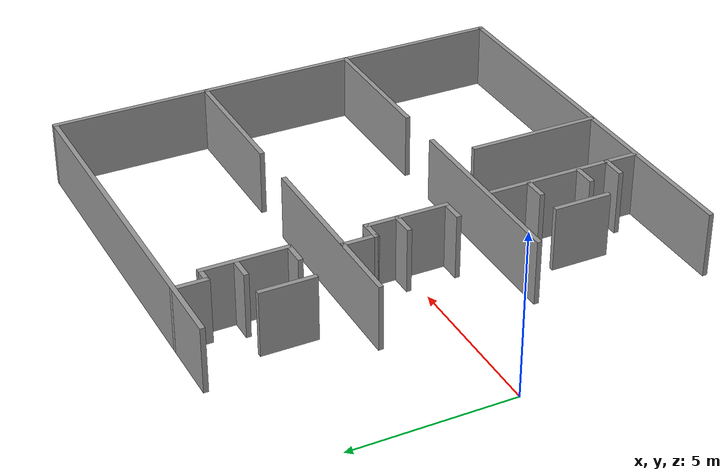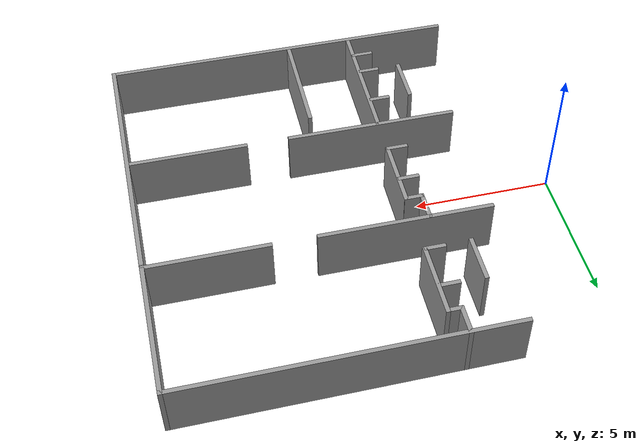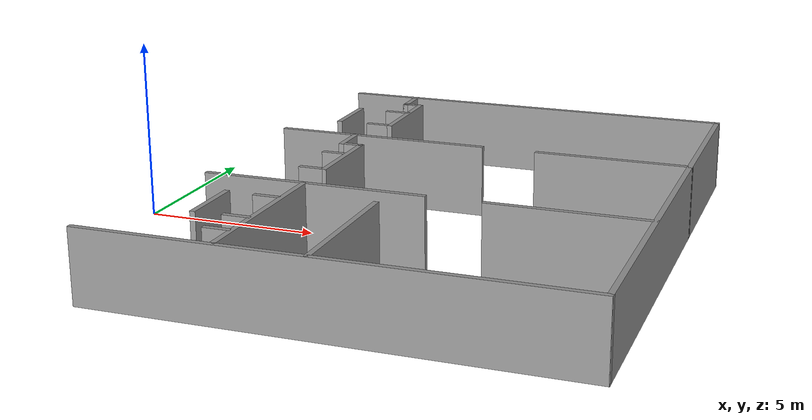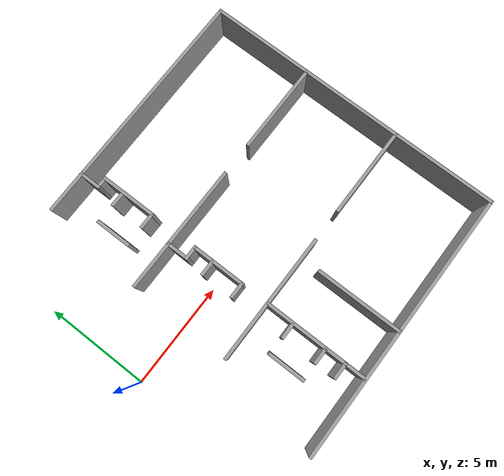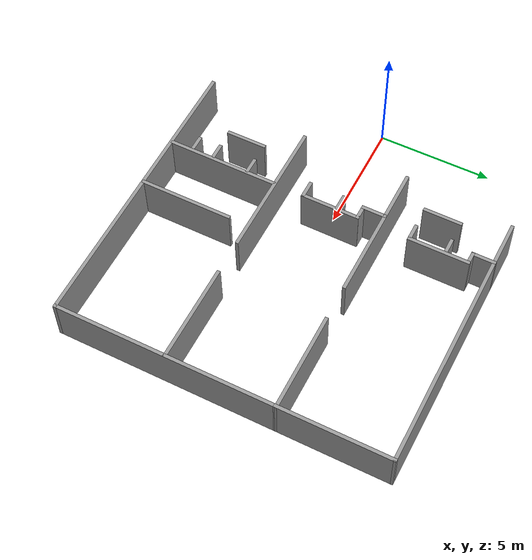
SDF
<sdf version="1.7">
 <model name="HQ">
  <link name="Wall_13">
   <pose>14.9584 4.80245 0 0 0 -1.5696</pose>
   <visual name="Wall_13_Visual">
    <pose>0 0 1.25 0 -0 0</pose>
    <geometry><box><size>4.99102 0.15 2</size></box></geometry>
    <material>
     <script><uri>file://media/materials/scripts/gazebo.material</uri><name>Gazebo/Grey</name></script>
     <ambient>1 1 1 1</ambient>
     <shader type="pixel"/>
    </material>
    <meta><layer>0</layer></meta>
   </visual>
   <collision name="Wall_13_Collision">
    <pose>0 0 1.25 0 -0 0</pose>
    <geometry><box><size>4.99102 0.15 2</size></box></geometry>
    <surface>
     <friction>
      <ode><mu>1</mu><mu2>1</mu2><fdir1>0 0 0</fdir1><slip1>0</slip1><slip2>0</slip2></ode>
      <torsional>
       <coefficient>1</coefficient>
       <patch_radius>0</patch_radius>
       <surface_radius>0</surface_radius>
       <use_patch_radius>1</use_patch_radius>
       <ode><slip>0</slip></ode>
      </torsional>
     </friction>
     <bounce><restitution_coefficient>0</restitution_coefficient><threshold>1e+06</threshold></bounce>
     <contact>
      <collide_without_contact>0</collide_without_contact>
      <collide_without_contact_bitmask>1</collide_without_contact_bitmask>
      <collide_bitmask>1</collide_bitmask>
      <ode>
       <soft_cfm>0</soft_cfm>
       <soft_erp>0.2</soft_erp>
       <kp>1e+13</kp>
       <kd>1</kd>
       <max_vel>0.01</max_vel>
       <min_depth>0</min_depth>
      </ode>
      <bullet>
       <split_impulse>1</split_impulse>
       <split_impulse_penetration_threshold>-0.01</split_impulse_penetration_threshold>
       <soft_cfm>0</soft_cfm>
       <soft_erp>0.2</soft_erp>
       <kp>1e+13</kp>
       <kd>1</kd>
      </bullet>
     </contact>
    </surface>
   </collision>
  </link>
  <link name="Wall_139">
   <pose>6.14807 -2.32093 0 0 0 -0.001582</pose>
   <visual name="Wall_139_Visual">
    <pose>0 0 1.25 0 -0 0</pose>
    <geometry><box><size>6.13288 0.15 2</size></box></geometry>
    <material>
     <script><uri>file://media/materials/scripts/gazebo.material</uri><name>Gazebo/Grey</name></script>
     <ambient>1 1 1 1</ambient>
     <shader type="pixel"/>
    </material>
    <meta><layer>0</layer></meta>
   </visual>
   <collision name="Wall_139_Collision">
    <pose>0 0 1.25 0 -0 0</pose>
    <geometry><box><size>6.13288 0.15 2</size></box></geometry>
    <surface>
     <friction>
      <ode><mu>1</mu><mu2>1</mu2><fdir1>0 0 0</fdir1><slip1>0</slip1><slip2>0</slip2></ode>
      <torsional>
       <coefficient>1</coefficient>
       <patch_radius>0</patch_radius>
       <surface_radius>0</surface_radius>
       <use_patch_radius>1</use_patch_radius>
       <ode><slip>0</slip></ode>
      </torsional>
     </friction>
     <bounce><restitution_coefficient>0</restitution_coefficient><threshold>1e+06</threshold></bounce>
     <contact>
      <collide_without_contact>0</collide_without_contact>
      <collide_without_contact_bitmask>1</collide_without_contact_bitmask>
      <collide_bitmask>1</collide_bitmask>
      <ode>
       <soft_cfm>0</soft_cfm>
       <soft_erp>0.2</soft_erp>
       <kp>1e+13</kp>
       <kd>1</kd>
       <max_vel>0.01</max_vel>
       <min_depth>0</min_depth>
      </ode>
      <bullet>
       <split_impulse>1</split_impulse>
       <split_impulse_penetration_threshold>-0.01</split_impulse_penetration_threshold>
       <soft_cfm>0</soft_cfm>
       <soft_erp>0.2</soft_erp>
       <kp>1e+13</kp>
       <kd>1</kd>
      </bullet>
     </contact>
    </surface>
   </collision>
  </link>
  <link name="Wall_142">
   <pose>8.22923 -5.21005 0 0 -0 1.5708</pose>
   <visual name="Wall_142_Visual">
    <pose>0 0 1.25 0 -0 0</pose>
    <geometry><box><size>4.0945 0.15 2</size></box></geometry>
    <material>
     <script><uri>file://media/materials/scripts/gazebo.material</uri><name>Gazebo/Grey</name></script>
     <ambient>1 1 1 1</ambient>
     <shader type="pixel"/>
    </material>
    <meta><layer>0</layer></meta>
   </visual>
   <collision name="Wall_142_Collision">
    <pose>0 0 1.25 0 -0 0</pose>
    <geometry><box><size>4.0945 0.15 2</size></box></geometry>
    <surface>
     <friction>
      <ode><mu>1</mu><mu2>1</mu2><fdir1>0 0 0</fdir1><slip1>0</slip1><slip2>0</slip2></ode>
      <torsional>
       <coefficient>1</coefficient>
       <patch_radius>0</patch_radius>
       <surface_radius>0</surface_radius>
       <use_patch_radius>1</use_patch_radius>
       <ode><slip>0</slip></ode>
      </torsional>
     </friction>
     <bounce><restitution_coefficient>0</restitution_coefficient><threshold>1e+06</threshold></bounce>
     <contact>
      <collide_without_contact>0</collide_without_contact>
      <collide_without_contact_bitmask>1</collide_without_contact_bitmask>
      <collide_bitmask>1</collide_bitmask>
      <ode>
       <soft_cfm>0</soft_cfm>
       <soft_erp>0.2</soft_erp>
       <kp>1e+13</kp>
       <kd>1</kd>
       <max_vel>0.01</max_vel>
       <min_depth>0</min_depth>
      </ode>
      <bullet>
       <split_impulse>1</split_impulse>
       <split_impulse_penetration_threshold>-0.01</split_impulse_penetration_threshold>
       <soft_cfm>0</soft_cfm>
       <soft_erp>0.2</soft_erp>
       <kp>1e+13</kp>
       <kd>1</kd>
      </bullet>
     </contact>
    </surface>
   </collision>
  </link>
  <link name="Wall_144">
   <pose>5.88898 -4.76429 0 0 -0 1.56838</pose>
   <visual name="Wall_144_Visual">
    <pose>0 0 1.25 0 -0 0</pose>
    <geometry><box><size>4.91701 0.15 2</size></box></geometry>
    <material>
     <script><uri>file://media/materials/scripts/gazebo.material</uri><name>Gazebo/Grey</name></script>
     <ambient>1 1 1 1</ambient>
     <shader type="pixel"/>
    </material>
    <meta><layer>0</layer></meta>
   </visual>
   <collision name="Wall_144_Collision">
    <pose>0 0 1.25 0 -0 0</pose>
    <geometry><box><size>4.91701 0.15 2</size></box></geometry>
    <surface>
     <friction>
      <ode><mu>1</mu><mu2>1</mu2><fdir1>0 0 0</fdir1><slip1>0</slip1><slip2>0</slip2></ode>
      <torsional>
       <coefficient>1</coefficient>
       <patch_radius>0</patch_radius>
       <surface_radius>0</surface_radius>
       <use_patch_radius>1</use_patch_radius>
       <ode><slip>0</slip></ode>
      </torsional>
     </friction>
     <bounce><restitution_coefficient>0</restitution_coefficient><threshold>1e+06</threshold></bounce>
     <contact>
      <collide_without_contact>0</collide_without_contact>
      <collide_without_contact_bitmask>1</collide_without_contact_bitmask>
      <collide_bitmask>1</collide_bitmask>
      <ode>
       <soft_cfm>0</soft_cfm>
       <soft_erp>0.2</soft_erp>
       <kp>1e+13</kp>
       <kd>1</kd>
       <max_vel>0.01</max_vel>
       <min_depth>0</min_depth>
      </ode>
      <bullet>
       <split_impulse>1</split_impulse>
       <split_impulse_penetration_threshold>-0.01</split_impulse_penetration_threshold>
       <soft_cfm>0</soft_cfm>
       <soft_erp>0.2</soft_erp>
       <kp>1e+13</kp>
       <kd>1</kd>
      </bullet>
     </contact>
    </surface>
   </collision>
  </link>
  <link name="Wall_148">
   <pose>5.5052 -3.63375 0 0 -0 0</pose>
   <visual name="Wall_148_Visual">
    <pose>0 0 1.25 0 -0 0</pose>
    <geometry><box><size>0.75 0.15 2</size></box></geometry>
    <material>
     <script><uri>file://media/materials/scripts/gazebo.material</uri><name>Gazebo/Grey</name></script>
     <ambient>1 1 1 1</ambient>
     <shader type="pixel"/>
    </material>
    <meta><layer>0</layer></meta>
   </visual>
   <collision name="Wall_148_Collision">
    <pose>0 0 1.25 0 -0 0</pose>
    <geometry><box><size>0.75 0.15 2</size></box></geometry>
    <surface>
     <friction>
      <ode><mu>1</mu><mu2>1</mu2><fdir1>0 0 0</fdir1><slip1>0</slip1><slip2>0</slip2></ode>
      <torsional>
       <coefficient>1</coefficient>
       <patch_radius>0</patch_radius>
       <surface_radius>0</surface_radius>
       <use_patch_radius>1</use_patch_radius>
       <ode><slip>0</slip></ode>
      </torsional>
     </friction>
     <bounce><restitution_coefficient>0</restitution_coefficient><threshold>1e+06</threshold></bounce>
     <contact>
      <collide_without_contact>0</collide_without_contact>
      <collide_without_contact_bitmask>1</collide_without_contact_bitmask>
      <collide_bitmask>1</collide_bitmask>
      <ode>
       <soft_cfm>0</soft_cfm>
       <soft_erp>0.2</soft_erp>
       <kp>1e+13</kp>
       <kd>1</kd>
       <max_vel>0.01</max_vel>
       <min_depth>0</min_depth>
      </ode>
      <bullet>
       <split_impulse>1</split_impulse>
       <split_impulse_penetration_threshold>-0.01</split_impulse_penetration_threshold>
       <soft_cfm>0</soft_cfm>
       <soft_erp>0.2</soft_erp>
       <kp>1e+13</kp>
       <kd>1</kd>
      </bullet>
     </contact>
    </surface>
   </collision>
  </link>
  <link name="Wall_15">
   <pose>14.9613 -2.41798 0 0 0 -1.5708</pose>
   <visual name="Wall_15_Visual">
    <pose>0 0 1.25 0 -0 0</pose>
    <geometry><box><size>9.75 0.15 2</size></box></geometry>
    <material>
     <script><uri>file://media/materials/scripts/gazebo.material</uri><name>Gazebo/Grey</name></script>
     <ambient>1 1 1 1</ambient>
     <shader type="pixel"/>
    </material>
    <meta><layer>0</layer></meta>
   </visual>
   <collision name="Wall_15_Collision">
    <pose>0 0 1.25 0 -0 0</pose>
    <geometry><box><size>9.75 0.15 2</size></box></geometry>
    <surface>
     <friction>
      <ode><mu>1</mu><mu2>1</mu2><fdir1>0 0 0</fdir1><slip1>0</slip1><slip2>0</slip2></ode>
      <torsional>
       <coefficient>1</coefficient>
       <patch_radius>0</patch_radius>
       <surface_radius>0</surface_radius>
       <use_patch_radius>1</use_patch_radius>
       <ode><slip>0</slip></ode>
      </torsional>
     </friction>
     <bounce><restitution_coefficient>0</restitution_coefficient><threshold>1e+06</threshold></bounce>
     <contact>
      <collide_without_contact>0</collide_without_contact>
      <collide_without_contact_bitmask>1</collide_without_contact_bitmask>
      <collide_bitmask>1</collide_bitmask>
      <ode>
       <soft_cfm>0</soft_cfm>
       <soft_erp>0.2</soft_erp>
       <kp>1e+13</kp>
       <kd>1</kd>
       <max_vel>0.01</max_vel>
       <min_depth>0</min_depth>
      </ode>
      <bullet>
       <split_impulse>1</split_impulse>
       <split_impulse_penetration_threshold>-0.01</split_impulse_penetration_threshold>
       <soft_cfm>0</soft_cfm>
       <soft_erp>0.2</soft_erp>
       <kp>1e+13</kp>
       <kd>1</kd>
      </bullet>
     </contact>
    </surface>
   </collision>
  </link>
  <link name="Wall_154">
   <pose>5.50425 -5.26133 0 0 -0 0.000815</pose>
   <visual name="Wall_154_Visual">
    <pose>0 0 1.25 0 -0 0</pose>
    <geometry><box><size>0.751903 0.15 2</size></box></geometry>
    <material>
     <script><uri>file://media/materials/scripts/gazebo.material</uri><name>Gazebo/Grey</name></script>
     <ambient>1 1 1 1</ambient>
     <shader type="pixel"/>
    </material>
    <meta><layer>0</layer></meta>
   </visual>
   <collision name="Wall_154_Collision">
    <pose>0 0 1.25 0 -0 0</pose>
    <geometry><box><size>0.751903 0.15 2</size></box></geometry>
    <surface>
     <friction>
      <ode><mu>1</mu><mu2>1</mu2><fdir1>0 0 0</fdir1><slip1>0</slip1><slip2>0</slip2></ode>
      <torsional>
       <coefficient>1</coefficient>
       <patch_radius>0</patch_radius>
       <surface_radius>0</surface_radius>
       <use_patch_radius>1</use_patch_radius>
       <ode><slip>0</slip></ode>
      </torsional>
     </friction>
     <bounce><restitution_coefficient>0</restitution_coefficient><threshold>1e+06</threshold></bounce>
     <contact>
      <collide_without_contact>0</collide_without_contact>
      <collide_without_contact_bitmask>1</collide_without_contact_bitmask>
      <collide_bitmask>1</collide_bitmask>
      <ode>
       <soft_cfm>0</soft_cfm>
       <soft_erp>0.2</soft_erp>
       <kp>1e+13</kp>
       <kd>1</kd>
       <max_vel>0.01</max_vel>
       <min_depth>0</min_depth>
      </ode>
      <bullet>
       <split_impulse>1</split_impulse>
       <split_impulse_penetration_threshold>-0.01</split_impulse_penetration_threshold>
       <soft_cfm>0</soft_cfm>
       <soft_erp>0.2</soft_erp>
       <kp>1e+13</kp>
       <kd>1</kd>
      </bullet>
     </contact>
    </surface>
   </collision>
  </link>
  <link name="Wall_159">
   <pose>5.53554 -6.23041 0 0 -0 3.14159</pose>
   <visual name="Wall_159_Visual">
    <pose>0 0 1.25 0 -0 0</pose>
    <geometry><box><size>0.800077 0.15 2</size></box></geometry>
    <material>
     <script><uri>file://media/materials/scripts/gazebo.material</uri><name>Gazebo/Grey</name></script>
     <ambient>1 1 1 1</ambient>
     <shader type="pixel"/>
    </material>
    <meta><layer>0</layer></meta>
   </visual>
   <collision name="Wall_159_Collision">
    <pose>0 0 1.25 0 -0 0</pose>
    <geometry><box><size>0.800077 0.15 2</size></box></geometry>
    <surface>
     <friction>
      <ode><mu>1</mu><mu2>1</mu2><fdir1>0 0 0</fdir1><slip1>0</slip1><slip2>0</slip2></ode>
      <torsional>
       <coefficient>1</coefficient>
       <patch_radius>0</patch_radius>
       <surface_radius>0</surface_radius>
       <use_patch_radius>1</use_patch_radius>
       <ode><slip>0</slip></ode>
      </torsional>
     </friction>
     <bounce><restitution_coefficient>0</restitution_coefficient><threshold>1e+06</threshold></bounce>
     <contact>
      <collide_without_contact>0</collide_without_contact>
      <collide_without_contact_bitmask>1</collide_without_contact_bitmask>
      <collide_bitmask>1</collide_bitmask>
      <ode>
       <soft_cfm>0</soft_cfm>
       <soft_erp>0.2</soft_erp>
       <kp>1e+13</kp>
       <kd>1</kd>
       <max_vel>0.01</max_vel>
       <min_depth>0</min_depth>
      </ode>
      <bullet>
       <split_impulse>1</split_impulse>
       <split_impulse_penetration_threshold>-0.01</split_impulse_penetration_threshold>
       <soft_cfm>0</soft_cfm>
       <soft_erp>0.2</soft_erp>
       <kp>1e+13</kp>
       <kd>1</kd>
      </bullet>
     </contact>
    </surface>
   </collision>
  </link>
  <link name="Wall_163">
   <pose>12.8544 -2.32786 0 0 0 -0.00122</pose>
   <visual name="Wall_163_Visual">
    <pose>0 0 1.25 0 -0 0</pose>
    <geometry><box><size>4.32225 0.15 2</size></box></geometry>
    <material>
     <script><uri>file://media/materials/scripts/gazebo.material</uri><name>Gazebo/Grey</name></script>
     <ambient>1 1 1 1</ambient>
     <shader type="pixel"/>
    </material>
    <meta><layer>0</layer></meta>
   </visual>
   <collision name="Wall_163_Collision">
    <pose>0 0 1.25 0 -0 0</pose>
    <geometry><box><size>4.32225 0.15 2</size></box></geometry>
    <surface>
     <friction>
      <ode><mu>1</mu><mu2>1</mu2><fdir1>0 0 0</fdir1><slip1>0</slip1><slip2>0</slip2></ode>
      <torsional>
       <coefficient>1</coefficient>
       <patch_radius>0</patch_radius>
       <surface_radius>0</surface_radius>
       <use_patch_radius>1</use_patch_radius>
       <ode><slip>0</slip></ode>
      </torsional>
     </friction>
     <bounce><restitution_coefficient>0</restitution_coefficient><threshold>1e+06</threshold></bounce>
     <contact>
      <collide_without_contact>0</collide_without_contact>
      <collide_without_contact_bitmask>1</collide_without_contact_bitmask>
      <collide_bitmask>1</collide_bitmask>
      <ode>
       <soft_cfm>0</soft_cfm>
       <soft_erp>0.2</soft_erp>
       <kp>1e+13</kp>
       <kd>1</kd>
       <max_vel>0.01</max_vel>
       <min_depth>0</min_depth>
      </ode>
      <bullet>
       <split_impulse>1</split_impulse>
       <split_impulse_penetration_threshold>-0.01</split_impulse_penetration_threshold>
       <soft_cfm>0</soft_cfm>
       <soft_erp>0.2</soft_erp>
       <kp>1e+13</kp>
       <kd>1</kd>
      </bullet>
     </contact>
    </surface>
   </collision>
  </link>
  <link name="Wall_17">
   <pose>8.60126 -7.2205 0 0 0 -3.1412</pose>
   <visual name="Wall_17_Visual">
    <pose>0 0 1.25 0 -0 0</pose>
    <geometry><box><size>12.8702 0.15 2</size></box></geometry>
    <material>
     <script><uri>file://media/materials/scripts/gazebo.material</uri><name>Gazebo/Grey</name></script>
     <ambient>1 1 1 1</ambient>
     <shader type="pixel"/>
    </material>
    <meta><layer>0</layer></meta>
   </visual>
   <collision name="Wall_17_Collision">
    <pose>0 0 1.25 0 -0 0</pose>
    <geometry><box><size>12.8702 0.15 2</size></box></geometry>
    <surface>
     <friction>
      <ode><mu>1</mu><mu2>1</mu2><fdir1>0 0 0</fdir1><slip1>0</slip1><slip2>0</slip2></ode>
      <torsional>
       <coefficient>1</coefficient>
       <patch_radius>0</patch_radius>
       <surface_radius>0</surface_radius>
       <use_patch_radius>1</use_patch_radius>
       <ode><slip>0</slip></ode>
      </torsional>
     </friction>
     <bounce><restitution_coefficient>0</restitution_coefficient><threshold>1e+06</threshold></bounce>
     <contact>
      <collide_without_contact>0</collide_without_contact>
      <collide_without_contact_bitmask>1</collide_without_contact_bitmask>
      <collide_bitmask>1</collide_bitmask>
      <ode>
       <soft_cfm>0</soft_cfm>
       <soft_erp>0.2</soft_erp>
       <kp>1e+13</kp>
       <kd>1</kd>
       <max_vel>0.01</max_vel>
       <min_depth>0</min_depth>
      </ode>
      <bullet>
       <split_impulse>1</split_impulse>
       <split_impulse_penetration_threshold>-0.01</split_impulse_penetration_threshold>
       <soft_cfm>0</soft_cfm>
       <soft_erp>0.2</soft_erp>
       <kp>1e+13</kp>
       <kd>1</kd>
      </bullet>
     </contact>
    </surface>
   </collision>
  </link>
  <link name="Wall_177">
   <pose>6.14231 2.4172 0 0 0 -0.00074</pose>
   <visual name="Wall_177_Visual">
    <pose>0 0 1.25 0 -0 0</pose>
    <geometry><box><size>6.10576 0.15 2</size></box></geometry>
    <material>
     <script><uri>file://media/materials/scripts/gazebo.material</uri><name>Gazebo/Grey</name></script>
     <ambient>1 1 1 1</ambient>
     <shader type="pixel"/>
    </material>
    <meta><layer>0</layer></meta>
   </visual>
   <collision name="Wall_177_Collision">
    <pose>0 0 1.25 0 -0 0</pose>
    <geometry><box><size>6.10576 0.15 2</size></box></geometry>
    <surface>
     <friction>
      <ode><mu>1</mu><mu2>1</mu2><fdir1>0 0 0</fdir1><slip1>0</slip1><slip2>0</slip2></ode>
      <torsional>
       <coefficient>1</coefficient>
       <patch_radius>0</patch_radius>
       <surface_radius>0</surface_radius>
       <use_patch_radius>1</use_patch_radius>
       <ode><slip>0</slip></ode>
      </torsional>
     </friction>
     <bounce><restitution_coefficient>0</restitution_coefficient><threshold>1e+06</threshold></bounce>
     <contact>
      <collide_without_contact>0</collide_without_contact>
      <collide_without_contact_bitmask>1</collide_without_contact_bitmask>
      <collide_bitmask>1</collide_bitmask>
      <ode>
       <soft_cfm>0</soft_cfm>
       <soft_erp>0.2</soft_erp>
       <kp>1e+13</kp>
       <kd>1</kd>
       <max_vel>0.01</max_vel>
       <min_depth>0</min_depth>
      </ode>
      <bullet>
       <split_impulse>1</split_impulse>
       <split_impulse_penetration_threshold>-0.01</split_impulse_penetration_threshold>
       <soft_cfm>0</soft_cfm>
       <soft_erp>0.2</soft_erp>
       <kp>1e+13</kp>
       <kd>1</kd>
      </bullet>
     </contact>
    </surface>
   </collision>
  </link>
  <link name="Wall_182">
   <pose>12.865 2.415 0 0 -0 0</pose>
   <visual name="Wall_182_Visual">
    <pose>0 0 1.25 0 -0 0</pose>
    <geometry><box><size>4.34 0.15 2</size></box></geometry>
    <material>
     <script><uri>file://media/materials/scripts/gazebo.material</uri><name>Gazebo/Grey</name></script>
     <ambient>1 1 1 1</ambient>
     <shader type="pixel"/>
    </material>
    <meta><layer>0</layer></meta>
   </visual>
   <collision name="Wall_182_Collision">
    <pose>0 0 1.25 0 -0 0</pose>
    <geometry><box><size>4.34 0.15 2</size></box></geometry>
    <surface>
     <friction>
      <ode><mu>1</mu><mu2>1</mu2><fdir1>0 0 0</fdir1><slip1>0</slip1><slip2>0</slip2></ode>
      <torsional>
       <coefficient>1</coefficient>
       <patch_radius>0</patch_radius>
       <surface_radius>0</surface_radius>
       <use_patch_radius>1</use_patch_radius>
       <ode><slip>0</slip></ode>
      </torsional>
     </friction>
     <bounce><restitution_coefficient>0</restitution_coefficient><threshold>1e+06</threshold></bounce>
     <contact>
      <collide_without_contact>0</collide_without_contact>
      <collide_without_contact_bitmask>1</collide_without_contact_bitmask>
      <collide_bitmask>1</collide_bitmask>
      <ode>
       <soft_cfm>0</soft_cfm>
       <soft_erp>0.2</soft_erp>
       <kp>1e+13</kp>
       <kd>1</kd>
       <max_vel>0.01</max_vel>
       <min_depth>0</min_depth>
      </ode>
      <bullet>
       <split_impulse>1</split_impulse>
       <split_impulse_penetration_threshold>-0.01</split_impulse_penetration_threshold>
       <soft_cfm>0</soft_cfm>
       <soft_erp>0.2</soft_erp>
       <kp>1e+13</kp>
       <kd>1</kd>
      </bullet>
     </contact>
    </surface>
   </collision>
  </link>
  <link name="Wall_187">
   <pose>5.88896 0.21866 0 0 -0 1.56805</pose>
   <inertial>
    <inertia><ixx>0</ixx><ixy>0</ixy><ixz>0</ixz><iyy>0</iyy><iyz>0</iyz><izz>0</izz></inertia>
    <mass>0</mass>
   </inertial>
   <visual name="Wall_187_Visual">
    <pose>0 0 1.25 0 -0 0</pose>
    <geometry><box><size>2.60562 0.15 2</size></box></geometry>
    <material>
     <script><uri>file://media/materials/scripts/gazebo.material</uri><name>Gazebo/Grey</name></script>
     <ambient>1 1 1 1</ambient>
     <shader type="pixel"/>
    </material>
    <meta><layer>0</layer></meta>
   </visual>
   <collision name="Wall_187_Collision">
    <pose>0 0 1.25 0 -0 0</pose>
    <geometry><box><size>2.60562 0.15 2</size></box></geometry>
    <surface>
     <friction>
      <ode><mu>1</mu><mu2>1</mu2><fdir1>0 0 0</fdir1><slip1>0</slip1><slip2>0</slip2></ode>
      <torsional>
       <coefficient>1</coefficient>
       <patch_radius>0</patch_radius>
       <surface_radius>0</surface_radius>
       <use_patch_radius>1</use_patch_radius>
       <ode><slip>0</slip></ode>
      </torsional>
     </friction>
     <bounce><restitution_coefficient>0</restitution_coefficient><threshold>1e+06</threshold></bounce>
     <contact>
      <collide_without_contact>0</collide_without_contact>
      <collide_without_contact_bitmask>1</collide_without_contact_bitmask>
      <collide_bitmask>1</collide_bitmask>
      <ode>
       <soft_cfm>0</soft_cfm>
       <soft_erp>0.2</soft_erp>
       <kp>1e+13</kp>
       <kd>1</kd>
       <max_vel>0.01</max_vel>
       <min_depth>0</min_depth>
      </ode>
      <bullet>
       <split_impulse>1</split_impulse>
       <split_impulse_penetration_threshold>-0.01</split_impulse_penetration_threshold>
       <soft_cfm>0</soft_cfm>
       <soft_erp>0.2</soft_erp>
       <kp>1e+13</kp>
       <kd>1</kd>
      </bullet>
     </contact>
    </surface>
   </collision>
  </link>
  <link name="Wall_209">
   <pose>5.5449 0.510604 0 0 -0 0</pose>
   <visual name="Wall_209_Visual">
    <pose>0 0 1.25 0 -0 0</pose>
    <geometry><box><size>0.761883 0.15 2</size></box></geometry>
    <material>
     <script><uri>file://media/materials/scripts/gazebo.material</uri><name>Gazebo/Grey</name></script>
     <ambient>1 1 1 1</ambient>
     <shader type="pixel"/>
    </material>
    <meta><layer>0</layer></meta>
   </visual>
   <collision name="Wall_209_Collision">
    <pose>0 0 1.25 0 -0 0</pose>
    <geometry><box><size>0.761883 0.15 2</size></box></geometry>
    <surface>
     <friction>
      <ode><mu>1</mu><mu2>1</mu2><fdir1>0 0 0</fdir1><slip1>0</slip1><slip2>0</slip2></ode>
      <torsional>
       <coefficient>1</coefficient>
       <patch_radius>0</patch_radius>
       <surface_radius>0</surface_radius>
       <use_patch_radius>1</use_patch_radius>
       <ode><slip>0</slip></ode>
      </torsional>
     </friction>
     <bounce><restitution_coefficient>0</restitution_coefficient><threshold>1e+06</threshold></bounce>
     <contact>
      <collide_without_contact>0</collide_without_contact>
      <collide_without_contact_bitmask>1</collide_without_contact_bitmask>
      <collide_bitmask>1</collide_bitmask>
      <ode>
       <soft_cfm>0</soft_cfm>
       <soft_erp>0.2</soft_erp>
       <kp>1e+13</kp>
       <kd>1</kd>
       <max_vel>0.01</max_vel>
       <min_depth>0</min_depth>
      </ode>
      <bullet>
       <split_impulse>1</split_impulse>
       <split_impulse_penetration_threshold>-0.01</split_impulse_penetration_threshold>
       <soft_cfm>0</soft_cfm>
       <soft_erp>0.2</soft_erp>
       <kp>1e+13</kp>
       <kd>1</kd>
      </bullet>
     </contact>
    </surface>
   </collision>
  </link>
  <link name="Wall_209_clone">
   <pose>5.54342 -1.00905 0 0 -0 0</pose>
   <visual name="Wall_209_Visual">
    <pose>0 0 1.25 0 -0 0</pose>
    <geometry><box><size>0.761883 0.15 2</size></box></geometry>
    <material>
     <script><uri>file://media/materials/scripts/gazebo.material</uri><name>Gazebo/Grey</name></script>
     <ambient>1 1 1 1</ambient>
     <shader type="pixel"/>
    </material>
    <meta><layer>0</layer></meta>
   </visual>
   <collision name="Wall_209_Collision">
    <pose>0 0 1.25 0 -0 0</pose>
    <geometry><box><size>0.761883 0.15 2</size></box></geometry>
    <surface>
     <friction>
      <ode><mu>1</mu><mu2>1</mu2><fdir1>0 0 0</fdir1><slip1>0</slip1><slip2>0</slip2></ode>
      <torsional>
       <coefficient>1</coefficient>
       <patch_radius>0</patch_radius>
       <surface_radius>0</surface_radius>
       <use_patch_radius>1</use_patch_radius>
       <ode><slip>0</slip></ode>
      </torsional>
     </friction>
     <bounce><restitution_coefficient>0</restitution_coefficient><threshold>1e+06</threshold></bounce>
     <contact>
      <collide_without_contact>0</collide_without_contact>
      <collide_without_contact_bitmask>1</collide_without_contact_bitmask>
      <collide_bitmask>1</collide_bitmask>
      <ode>
       <soft_cfm>0</soft_cfm>
       <soft_erp>0.2</soft_erp>
       <kp>1e+13</kp>
       <kd>1</kd>
       <max_vel>0.01</max_vel>
       <min_depth>0</min_depth>
      </ode>
      <bullet>
       <split_impulse>1</split_impulse>
       <split_impulse_penetration_threshold>-0.01</split_impulse_penetration_threshold>
       <soft_cfm>0</soft_cfm>
       <soft_erp>0.2</soft_erp>
       <kp>1e+13</kp>
       <kd>1</kd>
      </bullet>
     </contact>
    </surface>
   </collision>
  </link>
  <link name="Wall_213">
   <pose>5.88934 5.02004 0 0 -0 1.57131</pose>
   <inertial>
    <inertia><ixx>0</ixx><ixy>0</ixy><ixz>0</ixz><iyy>0</iyy><iyz>0</iyz><izz>0</izz></inertia>
    <mass>0</mass>
   </inertial>
   <visual name="Wall_213_Visual">
    <pose>0 0 1.25 0 -0 0</pose>
    <geometry><box><size>2.70705 0.15 2</size></box></geometry>
    <material>
     <script><uri>file://media/materials/scripts/gazebo.material</uri><name>Gazebo/Grey</name></script>
     <ambient>1 1 1 1</ambient>
     <shader type="pixel"/>
    </material>
    <meta><layer>0</layer></meta>
   </visual>
   <collision name="Wall_213_Collision">
    <pose>0 0 1.25 0 -0 0</pose>
    <geometry><box><size>2.70705 0.15 2</size></box></geometry>
    <surface>
     <friction>
      <ode><mu>1</mu><mu2>1</mu2><fdir1>0 0 0</fdir1><slip1>0</slip1><slip2>0</slip2></ode>
      <torsional>
       <coefficient>1</coefficient>
       <patch_radius>0</patch_radius>
       <surface_radius>0</surface_radius>
       <use_patch_radius>1</use_patch_radius>
       <ode><slip>0</slip></ode>
      </torsional>
     </friction>
     <bounce><restitution_coefficient>0</restitution_coefficient><threshold>1e+06</threshold></bounce>
     <contact>
      <collide_without_contact>0</collide_without_contact>
      <collide_without_contact_bitmask>1</collide_without_contact_bitmask>
      <collide_bitmask>1</collide_bitmask>
      <ode>
       <soft_cfm>0</soft_cfm>
       <soft_erp>0.2</soft_erp>
       <kp>1e+13</kp>
       <kd>1</kd>
       <max_vel>0.01</max_vel>
       <min_depth>0</min_depth>
      </ode>
      <bullet>
       <split_impulse>1</split_impulse>
       <split_impulse_penetration_threshold>-0.01</split_impulse_penetration_threshold>
       <soft_cfm>0</soft_cfm>
       <soft_erp>0.2</soft_erp>
       <kp>1e+13</kp>
       <kd>1</kd>
      </bullet>
     </contact>
    </surface>
   </collision>
  </link>
  <link name="Wall_22">
   <pose>4.3552 -4.44742 0 0 0 -1.5708</pose>
   <visual name="Wall_22_Visual">
    <pose>0 0 1.25 0 -0 0</pose>
    <geometry><box><size>1.77741 0.15 2</size></box></geometry>
    <material>
     <script><uri>file://media/materials/scripts/gazebo.material</uri><name>Gazebo/Grey</name></script>
     <ambient>1 1 1 1</ambient>
     <shader type="pixel"/>
    </material>
    <meta><layer>0</layer></meta>
   </visual>
   <collision name="Wall_22_Collision">
    <pose>0 0 1.25 0 -0 0</pose>
    <geometry><box><size>1.77741 0.15 2</size></box></geometry>
    <surface>
     <friction>
      <ode><mu>1</mu><mu2>1</mu2><fdir1>0 0 0</fdir1><slip1>0</slip1><slip2>0</slip2></ode>
      <torsional>
       <coefficient>1</coefficient>
       <patch_radius>0</patch_radius>
       <surface_radius>0</surface_radius>
       <use_patch_radius>1</use_patch_radius>
       <ode><slip>0</slip></ode>
      </torsional>
     </friction>
     <bounce><restitution_coefficient>0</restitution_coefficient><threshold>1e+06</threshold></bounce>
     <contact>
      <collide_without_contact>0</collide_without_contact>
      <collide_without_contact_bitmask>1</collide_without_contact_bitmask>
      <collide_bitmask>1</collide_bitmask>
      <ode>
       <soft_cfm>0</soft_cfm>
       <soft_erp>0.2</soft_erp>
       <kp>1e+13</kp>
       <kd>1</kd>
       <max_vel>0.01</max_vel>
       <min_depth>0</min_depth>
      </ode>
      <bullet>
       <split_impulse>1</split_impulse>
       <split_impulse_penetration_threshold>-0.01</split_impulse_penetration_threshold>
       <soft_cfm>0</soft_cfm>
       <soft_erp>0.2</soft_erp>
       <kp>1e+13</kp>
       <kd>1</kd>
      </bullet>
     </contact>
    </surface>
   </collision>
  </link>
  <link name="Wall_222">
   <pose>4.30023 4.51838 0 0 -0 1.5708</pose>
   <visual name="Wall_222_Visual">
    <pose>0 0 1.25 0 -0 0</pose>
    <geometry><box><size>1.71003 0.15 2</size></box></geometry>
    <material>
     <script><uri>file://media/materials/scripts/gazebo.material</uri><name>Gazebo/Grey</name></script>
     <ambient>1 1 1 1</ambient>
     <shader type="pixel"/>
    </material>
    <meta><layer>0</layer></meta>
   </visual>
   <collision name="Wall_222_Collision">
    <pose>0 0 1.25 0 -0 0</pose>
    <geometry><box><size>1.71003 0.15 2</size></box></geometry>
    <surface>
     <friction>
      <ode><mu>1</mu><mu2>1</mu2><fdir1>0 0 0</fdir1><slip1>0</slip1><slip2>0</slip2></ode>
      <torsional>
       <coefficient>1</coefficient>
       <patch_radius>0</patch_radius>
       <surface_radius>0</surface_radius>
       <use_patch_radius>1</use_patch_radius>
       <ode><slip>0</slip></ode>
      </torsional>
     </friction>
     <bounce><restitution_coefficient>0</restitution_coefficient><threshold>1e+06</threshold></bounce>
     <contact>
      <collide_without_contact>0</collide_without_contact>
      <collide_without_contact_bitmask>1</collide_without_contact_bitmask>
      <collide_bitmask>1</collide_bitmask>
      <ode>
       <soft_cfm>0</soft_cfm>
       <soft_erp>0.2</soft_erp>
       <kp>1e+13</kp>
       <kd>1</kd>
       <max_vel>0.01</max_vel>
       <min_depth>0</min_depth>
      </ode>
      <bullet>
       <split_impulse>1</split_impulse>
       <split_impulse_penetration_threshold>-0.01</split_impulse_penetration_threshold>
       <soft_cfm>0</soft_cfm>
       <soft_erp>0.2</soft_erp>
       <kp>1e+13</kp>
       <kd>1</kd>
      </bullet>
     </contact>
    </surface>
   </collision>
  </link>
  <link name="Wall_230">
   <pose>5.53023 5.29838 0 0 -0 0</pose>
   <visual name="Wall_230_Visual">
    <pose>0 0 1.25 0 -0 0</pose>
    <geometry><box><size>0.75 0.15 2</size></box></geometry>
    <material>
     <script><uri>file://media/materials/scripts/gazebo.material</uri><name>Gazebo/Grey</name></script>
     <ambient>1 1 1 1</ambient>
     <shader type="pixel"/>
    </material>
    <meta><layer>0</layer></meta>
   </visual>
   <collision name="Wall_230_Collision">
    <pose>0 0 1.25 0 -0 0</pose>
    <geometry><box><size>0.75 0.15 2</size></box></geometry>
    <surface>
     <friction>
      <ode><mu>1</mu><mu2>1</mu2><fdir1>0 0 0</fdir1><slip1>0</slip1><slip2>0</slip2></ode>
      <torsional>
       <coefficient>1</coefficient>
       <patch_radius>0</patch_radius>
       <surface_radius>0</surface_radius>
       <use_patch_radius>1</use_patch_radius>
       <ode><slip>0</slip></ode>
      </torsional>
     </friction>
     <bounce><restitution_coefficient>0</restitution_coefficient><threshold>1e+06</threshold></bounce>
     <contact>
      <collide_without_contact>0</collide_without_contact>
      <collide_without_contact_bitmask>1</collide_without_contact_bitmask>
      <collide_bitmask>1</collide_bitmask>
      <ode>
       <soft_cfm>0</soft_cfm>
       <soft_erp>0.2</soft_erp>
       <kp>1e+13</kp>
       <kd>1</kd>
       <max_vel>0.01</max_vel>
       <min_depth>0</min_depth>
      </ode>
      <bullet>
       <split_impulse>1</split_impulse>
       <split_impulse_penetration_threshold>-0.01</split_impulse_penetration_threshold>
       <soft_cfm>0</soft_cfm>
       <soft_erp>0.2</soft_erp>
       <kp>1e+13</kp>
       <kd>1</kd>
      </bullet>
     </contact>
    </surface>
   </collision>
  </link>
  <link name="Wall_230_clone">
   <pose>5.54219 3.74195 0 0 -0 0</pose>
   <visual name="Wall_230_Visual">
    <pose>0 0 1.25 0 -0 0</pose>
    <geometry><box><size>0.75 0.15 2</size></box></geometry>
    <material>
     <script><uri>file://media/materials/scripts/gazebo.material</uri><name>Gazebo/Grey</name></script>
     <ambient>1 1 1 1</ambient>
     <shader type="pixel"/>
    </material>
    <meta><layer>0</layer></meta>
   </visual>
   <collision name="Wall_230_Collision">
    <pose>0 0 1.25 0 -0 0</pose>
    <geometry><box><size>0.75 0.15 2</size></box></geometry>
    <surface>
     <friction>
      <ode><mu>1</mu><mu2>1</mu2><fdir1>0 0 0</fdir1><slip1>0</slip1><slip2>0</slip2></ode>
      <torsional>
       <coefficient>1</coefficient>
       <patch_radius>0</patch_radius>
       <surface_radius>0</surface_radius>
       <use_patch_radius>1</use_patch_radius>
       <ode><slip>0</slip></ode>
      </torsional>
     </friction>
     <bounce><restitution_coefficient>0</restitution_coefficient><threshold>1e+06</threshold></bounce>
     <contact>
      <collide_without_contact>0</collide_without_contact>
      <collide_without_contact_bitmask>1</collide_without_contact_bitmask>
      <collide_bitmask>1</collide_bitmask>
      <ode>
       <soft_cfm>0</soft_cfm>
       <soft_erp>0.2</soft_erp>
       <kp>1e+13</kp>
       <kd>1</kd>
       <max_vel>0.01</max_vel>
       <min_depth>0</min_depth>
      </ode>
      <bullet>
       <split_impulse>1</split_impulse>
       <split_impulse_penetration_threshold>-0.01</split_impulse_penetration_threshold>
       <soft_cfm>0</soft_cfm>
       <soft_erp>0.2</soft_erp>
       <kp>1e+13</kp>
       <kd>1</kd>
      </bullet>
     </contact>
    </surface>
   </collision>
  </link>
  <link name="Wall_232">
   <pose>5.43023 6.75838 0 0 0 -1.5708</pose>
   <visual name="Wall_232_Visual">
    <pose>0 0 1.25 0 -0 0</pose>
    <geometry><box><size>1.07 0.15 2</size></box></geometry>
    <material>
     <script><uri>file://media/materials/scripts/gazebo.material</uri><name>Gazebo/Grey</name></script>
     <ambient>1 1 1 1</ambient>
     <shader type="pixel"/>
    </material>
    <meta><layer>0</layer></meta>
   </visual>
   <collision name="Wall_232_Collision">
    <pose>0 0 1.25 0 -0 0</pose>
    <geometry><box><size>1.07 0.15 2</size></box></geometry>
    <surface>
     <friction>
      <ode><mu>1</mu><mu2>1</mu2><fdir1>0 0 0</fdir1><slip1>0</slip1><slip2>0</slip2></ode>
      <torsional>
       <coefficient>1</coefficient>
       <patch_radius>0</patch_radius>
       <surface_radius>0</surface_radius>
       <use_patch_radius>1</use_patch_radius>
       <ode><slip>0</slip></ode>
      </torsional>
     </friction>
     <bounce><restitution_coefficient>0</restitution_coefficient><threshold>1e+06</threshold></bounce>
     <contact>
      <collide_without_contact>0</collide_without_contact>
      <collide_without_contact_bitmask>1</collide_without_contact_bitmask>
      <collide_bitmask>1</collide_bitmask>
      <ode>
       <soft_cfm>0</soft_cfm>
       <soft_erp>0.2</soft_erp>
       <kp>1e+13</kp>
       <kd>1</kd>
       <max_vel>0.01</max_vel>
       <min_depth>0</min_depth>
      </ode>
      <bullet>
       <split_impulse>1</split_impulse>
       <split_impulse_penetration_threshold>-0.01</split_impulse_penetration_threshold>
       <soft_cfm>0</soft_cfm>
       <soft_erp>0.2</soft_erp>
       <kp>1e+13</kp>
       <kd>1</kd>
      </bullet>
     </contact>
    </surface>
   </collision>
  </link>
  <link name="Wall_233">
   <pose>5.60523 6.29838 0 0 -0 0</pose>
   <visual name="Wall_233_Visual">
    <pose>0 0 1.25 0 -0 0</pose>
    <geometry><box><size>0.5 0.15 2</size></box></geometry>
    <material>
     <script><uri>file://media/materials/scripts/gazebo.material</uri><name>Gazebo/Grey</name></script>
     <ambient>1 1 1 1</ambient>
     <shader type="pixel"/>
    </material>
    <meta><layer>0</layer></meta>
   </visual>
   <collision name="Wall_233_Collision">
    <pose>0 0 1.25 0 -0 0</pose>
    <geometry><box><size>0.5 0.15 2</size></box></geometry>
    <surface>
     <friction>
      <ode><mu>1</mu><mu2>1</mu2><fdir1>0 0 0</fdir1><slip1>0</slip1><slip2>0</slip2></ode>
      <torsional>
       <coefficient>1</coefficient>
       <patch_radius>0</patch_radius>
       <surface_radius>0</surface_radius>
       <use_patch_radius>1</use_patch_radius>
       <ode><slip>0</slip></ode>
      </torsional>
     </friction>
     <bounce><restitution_coefficient>0</restitution_coefficient><threshold>1e+06</threshold></bounce>
     <contact>
      <collide_without_contact>0</collide_without_contact>
      <collide_without_contact_bitmask>1</collide_without_contact_bitmask>
      <collide_bitmask>1</collide_bitmask>
      <ode>
       <soft_cfm>0</soft_cfm>
       <soft_erp>0.2</soft_erp>
       <kp>1e+13</kp>
       <kd>1</kd>
       <max_vel>0.01</max_vel>
       <min_depth>0</min_depth>
      </ode>
      <bullet>
       <split_impulse>1</split_impulse>
       <split_impulse_penetration_threshold>-0.01</split_impulse_penetration_threshold>
       <soft_cfm>0</soft_cfm>
       <soft_erp>0.2</soft_erp>
       <kp>1e+13</kp>
       <kd>1</kd>
      </bullet>
     </contact>
    </surface>
   </collision>
  </link>
  <link name="Wall_269">
   <pose>5.33585 1.92159 0 0 0 -1.5708</pose>
   <visual name="Wall_269_Visual">
    <pose>0 0 1.25 0 -0 0</pose>
    <geometry><box><size>1.09913 0.15 2</size></box></geometry>
    <material>
     <script><uri>file://media/materials/scripts/gazebo.material</uri><name>Gazebo/Grey</name></script>
     <ambient>1 1 1 1</ambient>
     <shader type="pixel"/>
    </material>
    <meta><layer>0</layer></meta>
   </visual>
   <collision name="Wall_269_Collision">
    <pose>0 0 1.25 0 -0 0</pose>
    <geometry><box><size>1.09913 0.15 2</size></box></geometry>
    <surface>
     <friction>
      <ode><mu>1</mu><mu2>1</mu2><fdir1>0 0 0</fdir1><slip1>0</slip1><slip2>0</slip2></ode>
      <torsional>
       <coefficient>1</coefficient>
       <patch_radius>0</patch_radius>
       <surface_radius>0</surface_radius>
       <use_patch_radius>1</use_patch_radius>
       <ode><slip>0</slip></ode>
      </torsional>
     </friction>
     <bounce><restitution_coefficient>0</restitution_coefficient><threshold>1e+06</threshold></bounce>
     <contact>
      <collide_without_contact>0</collide_without_contact>
      <collide_without_contact_bitmask>1</collide_without_contact_bitmask>
      <collide_bitmask>1</collide_bitmask>
      <ode>
       <soft_cfm>0</soft_cfm>
       <soft_erp>0.2</soft_erp>
       <kp>1e+13</kp>
       <kd>1</kd>
       <max_vel>0.01</max_vel>
       <min_depth>0</min_depth>
      </ode>
      <bullet>
       <split_impulse>1</split_impulse>
       <split_impulse_penetration_threshold>-0.01</split_impulse_penetration_threshold>
       <soft_cfm>0</soft_cfm>
       <soft_erp>0.2</soft_erp>
       <kp>1e+13</kp>
       <kd>1</kd>
      </bullet>
     </contact>
    </surface>
   </collision>
  </link>
  <link name="Wall_270">
   <pose>5.61029 1.44704 0 0 -0 0</pose>
   <visual name="Wall_270_Visual">
    <pose>0 0 1.25 0 -0 0</pose>
    <geometry><box><size>0.698883 0.15 2</size></box></geometry>
    <material>
     <script><uri>file://media/materials/scripts/gazebo.material</uri><name>Gazebo/Grey</name></script>
     <ambient>1 1 1 1</ambient>
     <shader type="pixel"/>
    </material>
    <meta><layer>0</layer></meta>
   </visual>
   <collision name="Wall_270_Collision">
    <pose>0 0 1.25 0 -0 0</pose>
    <geometry><box><size>0.698883 0.15 2</size></box></geometry>
    <surface>
     <friction>
      <ode><mu>1</mu><mu2>1</mu2><fdir1>0 0 0</fdir1><slip1>0</slip1><slip2>0</slip2></ode>
      <torsional>
       <coefficient>1</coefficient>
       <patch_radius>0</patch_radius>
       <surface_radius>0</surface_radius>
       <use_patch_radius>1</use_patch_radius>
       <ode><slip>0</slip></ode>
      </torsional>
     </friction>
     <bounce><restitution_coefficient>0</restitution_coefficient><threshold>1e+06</threshold></bounce>
     <contact>
      <collide_without_contact>0</collide_without_contact>
      <collide_without_contact_bitmask>1</collide_without_contact_bitmask>
      <collide_bitmask>1</collide_bitmask>
      <ode>
       <soft_cfm>0</soft_cfm>
       <soft_erp>0.2</soft_erp>
       <kp>1e+13</kp>
       <kd>1</kd>
       <max_vel>0.01</max_vel>
       <min_depth>0</min_depth>
      </ode>
      <bullet>
       <split_impulse>1</split_impulse>
       <split_impulse_penetration_threshold>-0.01</split_impulse_penetration_threshold>
       <soft_cfm>0</soft_cfm>
       <soft_erp>0.2</soft_erp>
       <kp>1e+13</kp>
       <kd>1</kd>
      </bullet>
     </contact>
    </surface>
   </collision>
  </link>
  <link name="Wall_9">
   <pose>9.24058 7.21984 0 0 -0 0.000531</pose>
   <visual name="Wall_9_Visual">
    <pose>0 0 1.25 0 -0 0</pose>
    <geometry><box><size>11.5799 0.15 2</size></box></geometry>
    <material>
     <script><uri>file://media/materials/scripts/gazebo.material</uri><name>Gazebo/Grey</name></script>
     <ambient>1 1 1 1</ambient>
     <shader type="pixel"/>
    </material>
    <meta><layer>0</layer></meta>
   </visual>
   <collision name="Wall_9_Collision">
    <pose>0 0 1.25 0 -0 0</pose>
    <geometry><box><size>11.5799 0.15 2</size></box></geometry>
    <surface>
     <friction>
      <ode><mu>1</mu><mu2>1</mu2><fdir1>0 0 0</fdir1><slip1>0</slip1><slip2>0</slip2></ode>
      <torsional>
       <coefficient>1</coefficient>
       <patch_radius>0</patch_radius>
       <surface_radius>0</surface_radius>
       <use_patch_radius>1</use_patch_radius>
       <ode><slip>0</slip></ode>
      </torsional>
     </friction>
     <bounce><restitution_coefficient>0</restitution_coefficient><threshold>1e+06</threshold></bounce>
     <contact>
      <collide_without_contact>0</collide_without_contact>
      <collide_without_contact_bitmask>1</collide_without_contact_bitmask>
      <collide_bitmask>1</collide_bitmask>
      <ode>
       <soft_cfm>0</soft_cfm>
       <soft_erp>0.2</soft_erp>
       <kp>1e+13</kp>
       <kd>1</kd>
       <max_vel>0.01</max_vel>
       <min_depth>0</min_depth>
      </ode>
      <bullet>
       <split_impulse>1</split_impulse>
       <split_impulse_penetration_threshold>-0.01</split_impulse_penetration_threshold>
       <soft_cfm>0</soft_cfm>
       <soft_erp>0.2</soft_erp>
       <kp>1e+13</kp>
       <kd>1</kd>
      </bullet>
     </contact>
    </surface>
   </collision>
  </link>
  <static>1</static>
 </model>
</sdf>
